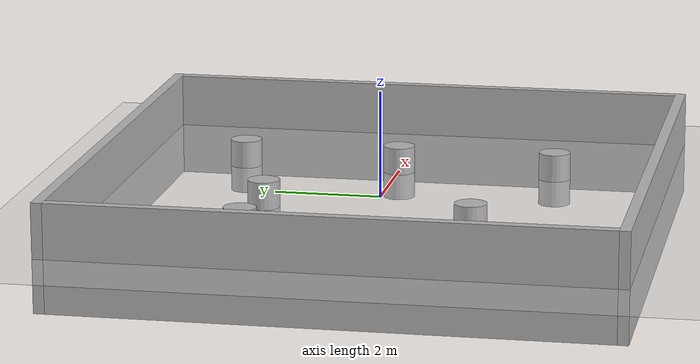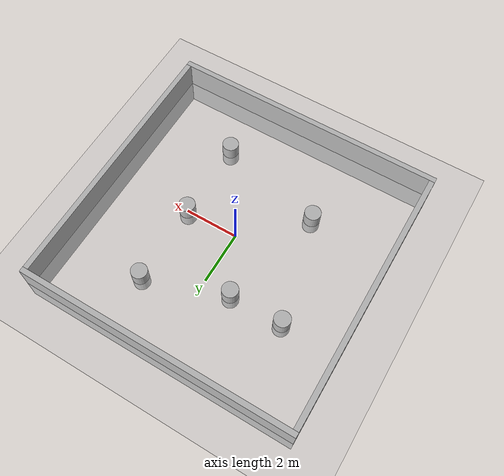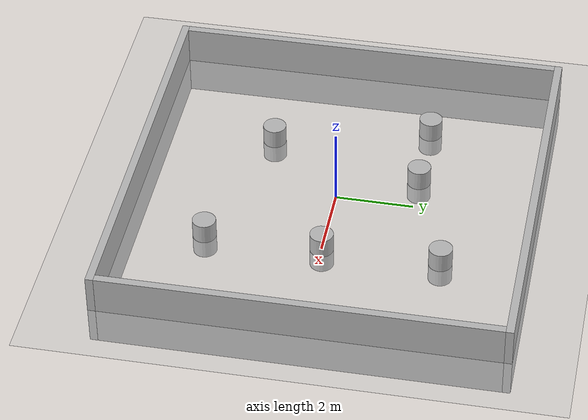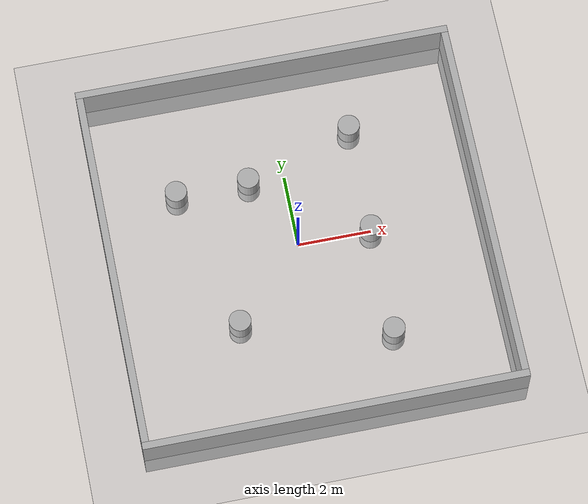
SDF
<sdf version="1.7">
 <world name="default">
  <light name="sun" type="directional">
   <pose>0 0 10 0 -0 0</pose>
   <diffuse>0.8 0.8 0.8 1</diffuse>
   <specular>0.2 0.2 0.2 1</specular>
   <attenuation>
    <range>1000</range>
    <constant>0.9</constant>
    <linear>0.01</linear>
    <quadratic>0.001</quadratic>
   </attenuation>
   <direction>-0.5 0.1 -0.9</direction>
   <spot><inner_angle>0</inner_angle><outer_angle>0</outer_angle><falloff>0</falloff></spot>
  </light>
  <model name="ground_plane">
   <static>1</static>
   <link name="link">
    <collision name="collision">
     <geometry><plane><normal>0 0 1</normal><size>100 100</size></plane></geometry>
     <surface><friction><ode><mu>100</mu><mu2>50</mu2></ode></friction></surface>
    </collision>
    <visual name="visual">
     <cast_shadows>0</cast_shadows>
     <geometry><plane><normal>0 0 1</normal><size>100 100</size></plane></geometry>
     <material>
      <script><uri>file://media/materials/scripts/gazebo.material</uri><name>Gazebo/Grey</name></script>
     </material>
    </visual>
   </link>
  </model>
  <gravity>0 0 -9.8</gravity>
  <magnetic_field>6e-06 2.3e-05 -4.2e-05</magnetic_field>
  <atmosphere type="adiabatic"/>
  <physics type="ode">
   <max_step_size>0.001</max_step_size>
   <real_time_factor>1</real_time_factor>
   <real_time_update_rate>1000</real_time_update_rate>
  </physics>
  <scene><ambient>0.4 0.4 0.4 1</ambient><background>0.7 0.7 0.7 1</background><shadows>1</shadows></scene>
  <spherical_coordinates>
   <surface_model>EARTH_WGS84</surface_model>
   <latitude_deg>0</latitude_deg>
   <longitude_deg>0</longitude_deg>
   <elevation>0</elevation>
   <heading_deg>0</heading_deg>
  </spherical_coordinates>
  <model name="wall_1">
   <pose>0 5.1 0    0 0 0</pose>
   <link name="wall_1_link">
    <visual name="wall_1_visual"><geometry><box><size>10.4 0.2 2</size></box></geometry></visual>
    <collision name="wall_1_collision"><geometry><box><size>10.4 0.2 2</size></box></geometry></collision>
   </link>
  </model>
  <model name="wall_2">
   <pose>0 -5.1 0    0 0 0</pose>
   <link name="wall_2_link">
    <visual name="wall_2_visual"><geometry><box><size>10.4 0.2 2</size></box></geometry></visual>
    <collision name="wall_2_collision"><geometry><box><size>10.4 0.2 2</size></box></geometry></collision>
   </link>
  </model>
  <model name="wall_3">
   <pose>5.1 0 0    0 0 0</pose>
   <link name="wall_3_link">
    <visual name="wall_3_visual"><geometry><box><size>0.2 10 2</size></box></geometry></visual>
    <collision name="wall_3_collision"><geometry><box><size>0.2 10 2</size></box></geometry></collision>
   </link>
  </model>
  <model name="wall_4">
   <pose>-5.1 0 0   0 0 0</pose>
   <link name="wall_4_link">
    <visual name="wall_4_visual"><geometry><box><size>0.2 10 2</size></box></geometry></visual>
    <collision name="wall_4_collision"><geometry><box><size>0.2 10 2</size></box></geometry></collision>
   </link>
  </model>
  <model name="cylinder_1">
   <pose>2 3 0    0 0 0</pose>
   <link name="cylinder_1_link">
    <visual name="visual">
     <geometry><cylinder><radius>0.3</radius><length>1</length></cylinder></geometry>
    </visual>
    <collision name="cylinder_1_collision">
     <geometry><cylinder><radius>0.3</radius><length>1</length></cylinder></geometry>
    </collision>
   </link>
  </model>
  <model name="cylinder_2">
   <pose>2 0 0    0 0 0</pose>
   <link name="cylinder_2_link">
    <visual name="visual">
     <geometry><cylinder><radius>0.3</radius><length>1</length></cylinder></geometry>
    </visual>
    <collision name="cylinder_2_collision">
     <geometry><cylinder><radius>0.3</radius><length>1</length></cylinder></geometry>
    </collision>
   </link>
  </model>
  <model name="cylinder_3">
   <pose>2 -3 0    0 0 0</pose>
   <link name="cylinder_3_link">
    <visual name="visual">
     <geometry><cylinder><radius>0.3</radius><length>1</length></cylinder></geometry>
    </visual>
    <collision name="cylinder_3_collision">
     <geometry><cylinder><radius>0.3</radius><length>1</length></cylinder></geometry>
    </collision>
   </link>
  </model>
  <model name="cylinder_4">
   <pose>-2 -2 0    0 0 0</pose>
   <link name="cylinder_4_link">
    <visual name="visual">
     <geometry><cylinder><radius>0.3</radius><length>1</length></cylinder></geometry>
    </visual>
    <collision name="cylinder_4_collision">
     <geometry><cylinder><radius>0.3</radius><length>1</length></cylinder></geometry>
    </collision>
   </link>
  </model>
  <model name="cylinder_5">
   <pose>-1 2 0    0 0 0</pose>
   <link name="cylinder_5_link">
    <visual name="visual">
     <geometry><cylinder><radius>0.3</radius><length>1</length></cylinder></geometry>
    </visual>
    <collision name="cylinder_5_collision">
     <geometry><cylinder><radius>0.3</radius><length>1</length></cylinder></geometry>
    </collision>
   </link>
  </model>
  <model name="cylinder_6">
   <pose>-3 2 0    0 0 0</pose>
   <link name="cylinder_6_link">
    <visual name="visual">
     <geometry><cylinder><radius>0.3</radius><length>1</length></cylinder></geometry>
    </visual>
    <collision name="cylinder_6_collision">
     <geometry><cylinder><radius>0.3</radius><length>1</length></cylinder></geometry>
    </collision>
   </link>
  </model>
 </world>
</sdf>
